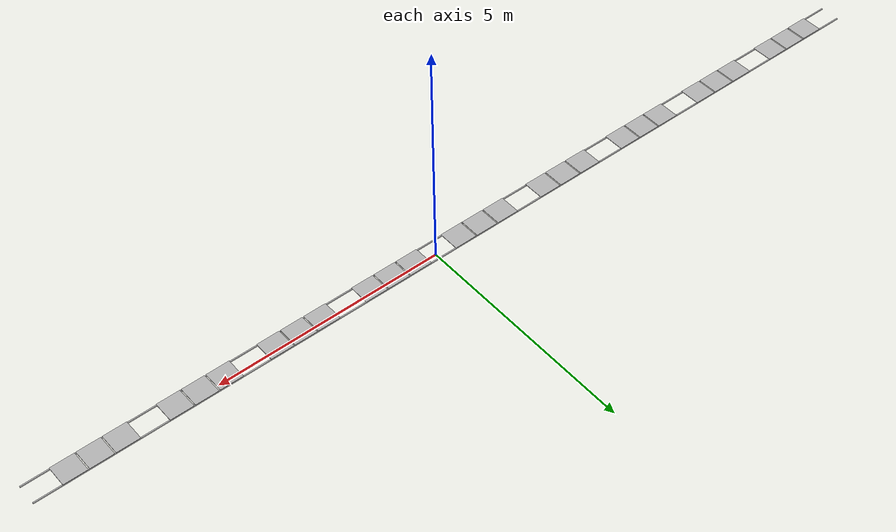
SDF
<?xml version='1.0'?>
<sdf version='1.5'>

  <model name='pathway1'>
    <link name='Rod11'>
      <self_collide>true</self_collide>
      <pose>-1.075 -0.2175 0.15 0 0 0</pose>
      <inertial>
        <mass>1</mass>
        <inertia>
          <ixx>0.000104167</ixx>
          <ixy>0</ixy>
          <ixz>0</ixz>
          <iyy>33.0009</iyy>
          <iyz>0</iyz>
          <izz>33.0009</izz>
        </inertia>
      </inertial>

      <visual name='Rod1_visual'>
        <geometry>
          <box>
            <size>19.9 0.025 0.025</size>
          </box>
        </geometry>
      </visual>

      <collision name='Rod1_collision'>
        <geometry>
          <box>
            <size>19.9 0.025 0.025</size>
          </box>
        </geometry>
        <surface>
          <friction>
            <ode>
              <mu>1.0</mu>
              <mu2>1.0</mu2>
            </ode>
          </friction>
        </surface>
      </collision>
    </link>

    <joint name="jointRod11" type="prismatic">
      <parent>world</parent>
      <child>Rod11</child>
      <pose>0 0 0 0 0 0</pose>
      <axis>
        <xyz>0 0 1</xyz>
      </axis>
    </joint>

    <link name='Rod12'>
      <self_collide>true</self_collide>
      <pose>-1.075 0.2175 0.15 0 0 0</pose>
      <inertial>
        <mass>1</mass>
        <inertia>
          <ixx>0.000104167</ixx>
          <ixy>0</ixy>
          <ixz>0</ixz>
          <iyy>33.0009</iyy>
          <iyz>0</iyz>
          <izz>33.0009</izz>
        </inertia>
      </inertial>

      <visual name='Rod1_visual'>
        <geometry>
          <box>
            <size>19.9 0.025 0.025</size>
          </box>
        </geometry>
      </visual>

      <collision name='Rod1_collision'>
        <geometry>
          <box>
            <size>19.9 0.025 0.025</size>
          </box>
        </geometry>
        <surface>
          <friction>
            <ode>
              <mu>1.0</mu>
              <mu2>1.0</mu2>
            </ode>
          </friction>
        </surface>
      </collision>
    </link>

    <joint name="Rod1toRod1" type="fixed">
      <parent>Rod11</parent>
      <child>Rod12</child>
    </joint>

 <link name='pathway1_1'>
  <pose>-10.2 0 0.18 0 0 0</pose>
  <inertial>
    <mass>1</mass>
    <inertia>
      <ixx>0.0176417</ixx>
      <ixy>0</ixy>
      <ixz>0</ixz>
      <iyy>0.0208417</iyy>
      <iyz>0</iyz>
      <izz>0.0384667</izz>
    </inertia>
  </inertial>

  <visual name='pathway1h_visual'>
    <geometry>
      <box>
        <size>0.5 0.46 0.01</size>
      </box>
    </geometry>
  </visual>

  <collision name='pathway1h_collision'>
    <geometry>
      <box>
        <size>0.5 0.46 0.01</size>
      </box>
    </geometry>
    <surface>
          <friction>
            <ode>
              <mu>1.0</mu>
              <mu2>1.0</mu2>
            </ode>
          </friction>
    </surface>
  </collision>
</link>

    <joint name="pathway1toRod111" type="fixed">
      <parent>Rod11</parent>
      <child>pathway1_1</child>
    </joint>

    <joint name="pathway1toRod112" type="fixed">
      <parent>Rod12</parent>
      <child>pathway1_1</child>
    </joint>

    <link name='pathway1_2'>
      <pose>-9.675 0 0.1725 0 0 0</pose>
      <inertial>
        <mass>1</mass>
        <inertia>
          <ixx>0.0176417</ixx>
          <ixy>0</ixy>
          <ixz>0</ixz>
          <iyy>0.0208417</iyy>
          <iyz>0</iyz>
          <izz>0.0384667</izz>
        </inertia>
      </inertial>

      <visual name='pathway1h_visual'>
        <geometry>
          <box>
            <size>0.5 0.46 0.01</size>
          </box>
        </geometry>
      </visual>

      <collision name='pathway1h_collision'>
        <geometry>
          <box>
            <size>0.5 0.46 0.01</size>
          </box>
        </geometry>
        <surface>
              <friction>
                <ode>
                  <mu>1.0</mu>
                  <mu2>1.0</mu2>
                </ode>
              </friction>
            </surface>
        <surface>
              <friction>
                <ode>
                  <mu>1.0</mu>
                  <mu2>1.0</mu2>
                </ode>
              </friction>
            </surface>
      </collision>
    </link>

    <joint name="pathway1toRod121" type="fixed">
      <parent>Rod11</parent>
      <child>pathway1_2</child>
    </joint>

    <joint name="pathway1toRod122" type="fixed">
      <parent>Rod12</parent>
      <child>pathway1_2</child>
    </joint>
    <link name='pathway1_3'>
      <pose>-9.15 0 0.1725 0 0 0</pose>
      <inertial>
        <mass>1</mass>
        <inertia>
          <ixx>0.0176417</ixx>
          <ixy>0</ixy>
          <ixz>0</ixz>
          <iyy>0.0208417</iyy>
          <iyz>0</iyz>
          <izz>0.0384667</izz>
        </inertia>
      </inertial>

      <visual name='pathway1h_visual'>
        <geometry>
          <box>
            <size>0.5 0.46 0.01</size>
          </box>
        </geometry>
      </visual>

      <collision name='pathway1h_collision'>
        <geometry>
          <box>
            <size>0.5 0.46 0.01</size>
          </box>
        </geometry>
        <surface>
          <friction>
            <ode>
              <mu>1.0</mu>
              <mu2>1.0</mu2>
            </ode>
          </friction>
        </surface>
      </collision>
    </link>

    <joint name="pathway1toRod131" type="fixed">
      <parent>Rod11</parent>
      <child>pathway1_3</child>
    </joint>

    <joint name="pathway1toRod132" type="fixed">
      <parent>Rod12</parent>
      <child>pathway1_3</child>
    </joint>

    <link name='pathway1_4'>
      <pose>-8.05 0 0.1725 0 0 0</pose>
      <inertial>
        <mass>1</mass>
        <inertia>
          <ixx>0.0176417</ixx>
          <ixy>0</ixy>
          <ixz>0</ixz>
          <iyy>0.0208417</iyy>
          <iyz>0</iyz>
          <izz>0.0384667</izz>
        </inertia>
      </inertial>

      <visual name='pathway1h_visual'>
        <geometry>
          <box>
            <size>0.5 0.46 0.01</size>
          </box>
        </geometry>
      </visual>

      <collision name='pathway1h_collision'>
        <geometry>
          <box>
            <size>0.5 0.46 0.01</size>
          </box>
        </geometry>
        <surface>
          <friction>
            <ode>
              <mu>1.0</mu>
              <mu2>1.0</mu2>
            </ode>
          </friction>
        </surface>
      </collision>
    </link>

    <joint name="pathway1toRod141" type="fixed">
      <parent>Rod11</parent>
      <child>pathway1_4</child>
    </joint>

    <joint name="pathway1toRod142" type="fixed">
      <parent>Rod12</parent>
      <child>pathway1_4</child>
    </joint>

    <link name='pathway1_5'>
      <pose>-7.525 0 0.1725 0 0 0</pose>
      <inertial>
        <mass>1</mass>
        <inertia>
          <ixx>0.0176417</ixx>
          <ixy>0</ixy>
          <ixz>0</ixz>
          <iyy>0.0208417</iyy>
          <iyz>0</iyz>
          <izz>0.0384667</izz>
        </inertia>
      </inertial>

      <visual name='pathway1h_visual'>
        <geometry>
          <box>
            <size>0.5 0.46 0.01</size>
          </box>
        </geometry>
      </visual>

      <collision name='pathway1h_collision'>
        <geometry>
          <box>
            <size>0.5 0.46 0.01</size>
          </box>
        </geometry>
        <surface>
              <friction>
                <ode>
                  <mu>1.0</mu>
                  <mu2>1.0</mu2>
                </ode>
              </friction>
            </surface>
      </collision>
    </link>

    <joint name="pathway1toRod151" type="fixed">
      <parent>Rod11</parent>
      <child>pathway1_5</child>
    </joint>

    <joint name="pathway1toRod152" type="fixed">
      <parent>Rod12</parent>
      <child>pathway1_5</child>
    </joint>

    <link name='pathway1_6'>
      <pose>-7.0 0 0.1725 0 0 0</pose>
      <inertial>
        <mass>1</mass>
        <inertia>
          <ixx>0.0176417</ixx>
          <ixy>0</ixy>
          <ixz>0</ixz>
          <iyy>0.0208417</iyy>
          <iyz>0</iyz>
          <izz>0.0384667</izz>
        </inertia>
      </inertial>

      <visual name='pathway1h_visual'>
        <geometry>
          <box>
            <size>0.5 0.46 0.01</size>
          </box>
        </geometry>
      </visual>

      <collision name='pathway1h_collision'>
        <geometry>
          <box>
            <size>0.5 0.46 0.01</size>
          </box>
        </geometry>
        <surface>
          <friction>
            <ode>
              <mu>1.0</mu>
              <mu2>1.0</mu2>
            </ode>
          </friction>
        </surface>
      </collision>
    </link>

    <joint name="pathway1toRod161" type="fixed">
      <parent>Rod11</parent>
      <child>pathway1_6</child>
    </joint>

    <joint name="pathway1toRod162" type="fixed">
      <parent>Rod12</parent>
      <child>pathway1_6</child>
    </joint>

    <link name='pathway1_7'>
      <pose>-5.9 0 0.1725 0 0 0</pose>
      <inertial>
        <mass>1</mass>
        <inertia>
          <ixx>0.0176417</ixx>
          <ixy>0</ixy>
          <ixz>0</ixz>
          <iyy>0.0208417</iyy>
          <iyz>0</iyz>
          <izz>0.0384667</izz>
        </inertia>
      </inertial>

      <visual name='pathway1h_visual'>
        <geometry>
          <box>
            <size>0.5 0.46 0.01</size>
          </box>
        </geometry>
      </visual>

      <collision name='pathway1h_collision'>
        <geometry>
          <box>
            <size>0.5 0.46 0.01</size>
          </box>
        </geometry>
        <surface>
          <friction>
            <ode>
              <mu>1.0</mu>
              <mu2>1.0</mu2>
            </ode>
          </friction>
        </surface>
      </collision>
    </link>

    <joint name="pathway1toRod171" type="fixed">
      <parent>Rod11</parent>
      <child>pathway1_7</child>
    </joint>

    <joint name="pathway1toRod172" type="fixed">
      <parent>Rod12</parent>
      <child>pathway1_7</child>
    </joint>

    <link name='pathway1_8'>
      <pose>-5.375 0 0.1725 0 0 0</pose>
      <inertial>
        <mass>1</mass>
        <inertia>
          <ixx>0.0176417</ixx>
          <ixy>0</ixy>
          <ixz>0</ixz>
          <iyy>0.0208417</iyy>
          <iyz>0</iyz>
          <izz>0.0384667</izz>
        </inertia>
      </inertial>

      <visual name='pathway1h_visual'>
        <geometry>
          <box>
            <size>0.5 0.46 0.01</size>
          </box>
        </geometry>
      </visual>

      <collision name='pathway1h_collision'>
        <geometry>
          <box>
            <size>0.5 0.46 0.01</size>
          </box>
        </geometry>
        <surface>
              <friction>
                <ode>
                  <mu>1.0</mu>
                  <mu2>1.0</mu2>
                </ode>
              </friction>
            </surface>
      </collision>
    </link>

    <joint name="pathway1toRod181" type="fixed">
      <parent>Rod11</parent>
      <child>pathway1_8</child>
    </joint>

    <joint name="pathway1toRod182" type="fixed">
      <parent>Rod12</parent>
      <child>pathway1_8</child>
    </joint>

    <link name='pathway1_9'>
      <pose>-4.85 0 0.1725 0 0 0</pose>
      <inertial>
        <mass>1</mass>
        <inertia>
          <ixx>0.0176417</ixx>
          <ixy>0</ixy>
          <ixz>0</ixz>
          <iyy>0.0208417</iyy>
          <iyz>0</iyz>
          <izz>0.0384667</izz>
        </inertia>
      </inertial>

      <visual name='pathway1h_visual'>
        <geometry>
          <box>
            <size>0.5 0.46 0.01</size>
          </box>
        </geometry>
      </visual>

      <collision name='pathway1h_collision'>
        <geometry>
          <box>
            <size>0.5 0.46 0.01</size>
          </box>
        </geometry>
        <surface>
          <friction>
            <ode>
              <mu>1.0</mu>
              <mu2>1.0</mu2>
            </ode>
          </friction>
        </surface>
      </collision>
    </link>

    <joint name="pathway1toRod191" type="fixed">
      <parent>Rod11</parent>
      <child>pathway1_9</child>
    </joint>

    <joint name="pathway1toRod192" type="fixed">
      <parent>Rod12</parent>
      <child>pathway1_9</child>
    </joint>

    <link name='pathway1_10'>
      <pose>-3.75 0 0.1725 0 0 0</pose>
      <inertial>
        <mass>1</mass>
        <inertia>
          <ixx>0.0176417</ixx>
          <ixy>0</ixy>
          <ixz>0</ixz>
          <iyy>0.0208417</iyy>
          <iyz>0</iyz>
          <izz>0.0384667</izz>
        </inertia>
      </inertial>

      <visual name='pathway1h_visual'>
        <geometry>
          <box>
            <size>0.5 0.46 0.01</size>
          </box>
        </geometry>
      </visual>

      <collision name='pathway1h_collision'>
        <geometry>
          <box>
            <size>0.5 0.46 0.01</size>
          </box>
        </geometry>
        <surface>
          <friction>
            <ode>
              <mu>1.0</mu>
              <mu2>1.0</mu2>
            </ode>
          </friction>
        </surface>
      </collision>
    </link>

    <joint name="pathway1toRod1101" type="fixed">
      <parent>Rod11</parent>
      <child>pathway1_10</child>
    </joint>

    <joint name="pathway1toRod1102" type="fixed">
      <parent>Rod12</parent>
      <child>pathway1_10</child>
    </joint>

    <link name='pathway1_11'>
      <pose>-3.225 0 0.1725 0 0 0</pose>
      <inertial>
        <mass>1</mass>
        <inertia>
          <ixx>0.0176417</ixx>
          <ixy>0</ixy>
          <ixz>0</ixz>
          <iyy>0.0208417</iyy>
          <iyz>0</iyz>
          <izz>0.0384667</izz>
        </inertia>
      </inertial>

      <visual name='pathway1h_visual'>
        <geometry>
          <box>
            <size>0.5 0.46 0.01</size>
          </box>
        </geometry>
      </visual>

      <collision name='pathway1h_collision'>
        <geometry>
          <box>
            <size>0.5 0.46 0.01</size>
          </box>
        </geometry>
        <surface>
          <friction>
            <ode>
              <mu>1.0</mu>
              <mu2>1.0</mu2>
            </ode>
          </friction>
        </surface>
      </collision>
    </link>

    <joint name="pathway1toRod1111" type="fixed">
      <parent>Rod11</parent>
      <child>pathway1_11</child>
    </joint>

    <joint name="pathway1toRod1112" type="fixed">
      <parent>Rod12</parent>
      <child>pathway1_11</child>
    </joint>

    <link name='pathway1_12'>
      <pose>-2.7 0 0.1725 0 0 0</pose>
      <inertial>
        <mass>1</mass>
       <inertia>
          <ixx>0.0176417</ixx>
          <ixy>0</ixy>
          <ixz>0</ixz>
          <iyy>0.0208417</iyy>
          <iyz>0</iyz>
          <izz>0.0384667</izz>
        </inertia>
      </inertial>

      <visual name='pathway1h_visual'>
        <geometry>
          <box>
            <size>0.5 0.46 0.01</size>
          </box>
        </geometry>
      </visual>

      <collision name='pathway1h_collision'>
        <geometry>
          <box>
            <size>0.5 0.46 0.01</size>
          </box>
        </geometry>
        <surface>
          <friction>
            <ode>
              <mu>1.0</mu>
              <mu2>1.0</mu2>
            </ode>
          </friction>
        </surface>
      </collision>
    </link>

    <joint name="pathway1toRod1121" type="fixed">
      <parent>Rod11</parent>
      <child>pathway1_12</child>
    </joint>

    <joint name="pathway1toRod1122" type="fixed">
      <parent>Rod12</parent>
      <child>pathway1_12</child>
    </joint>

    <link name='pathway1_13'>
      <pose>-1.6 0 0.1725 0 0 0</pose>
      <inertial>
        <mass>1</mass>
        <inertia>
          <ixx>0.0176417</ixx>
          <ixy>0</ixy>
          <ixz>0</ixz>
          <iyy>0.0208417</iyy>
          <iyz>0</iyz>
          <izz>0.0384667</izz>
        </inertia>
      </inertial>

      <visual name='pathway1h_visual'>
        <geometry>
          <box>
            <size>0.5 0.46 0.01</size>
          </box>
        </geometry>
      </visual>

      <collision name='pathway1h_collision'>
        <geometry>
          <box>
            <size>0.5 0.46 0.01</size>
          </box>
        </geometry>
        <surface>
          <friction>
            <ode>
              <mu>1.0</mu>
              <mu2>1.0</mu2>
            </ode>
          </friction>
        </surface>
      </collision>
    </link>

    <joint name="pathway1toRod1131" type="fixed">
      <parent>Rod11</parent>
      <child>pathway1_13</child>
    </joint>

    <joint name="pathway1toRod1132" type="fixed">
      <parent>Rod12</parent>
      <child>pathway1_13</child>
    </joint>

    <link name='pathway1_14'>
      <pose>-1.075 0 0.1725 0 0 0</pose>
      <inertial>
        <mass>1</mass>
       <inertia>
          <ixx>0.0176417</ixx>
          <ixy>0</ixy>
          <ixz>0</ixz>
          <iyy>0.0208417</iyy>
          <iyz>0</iyz>
          <izz>0.0384667</izz>
        </inertia>
      </inertial>

      <visual name='pathway1h_visual'>
        <geometry>
          <box>
            <size>0.5 0.46 0.01</size>
          </box>
        </geometry>
      </visual>

      <collision name='pathway1h_collision'>
        <geometry>
          <box>
            <size>0.5 0.46 0.01</size>
          </box>
        </geometry>
        <surface>
          <friction>
            <ode>
              <mu>1.0</mu>
              <mu2>1.0</mu2>
            </ode>
          </friction>
        </surface>
      </collision>
    </link>

    <joint name="pathway1toRod1141" type="fixed">
      <parent>Rod11</parent>
      <child>pathway1_14</child>
    </joint>

    <joint name="pathway1toRod1142" type="fixed">
      <parent>Rod12</parent>
      <child>pathway1_14</child>
    </joint>

    <link name='pathway1_15'>
      <pose>-0.55 0 0.1725 0 0 0</pose>
      <inertial>
        <mass>1</mass>
        <inertia>
          <ixx>0.0176417</ixx>
          <ixy>0</ixy>
          <ixz>0</ixz>
          <iyy>0.0208417</iyy>
          <iyz>0</iyz>
          <izz>0.0384667</izz>
        </inertia>
      </inertial>

      <visual name='pathway1h_visual'>
        <geometry>
          <box>
            <size>0.5 0.46 0.01</size>
          </box>
        </geometry>
      </visual>

      <collision name='pathway1h_collision'>
        <geometry>
          <box>
            <size>0.5 0.46 0.01</size>
          </box>
        </geometry>
        <surface>
          <friction>
            <ode>
              <mu>1.0</mu>
              <mu2>1.0</mu2>
            </ode>
          </friction>
        </surface>
      </collision>
    </link>

    <joint name="pathway1toRod1151" type="fixed">
      <parent>Rod11</parent>
      <child>pathway1_15</child>
    </joint>

    <joint name="pathway1toRod1152" type="fixed">
      <parent>Rod12</parent>
      <child>pathway1_15</child>
    </joint>

    <link name='pathway1_16'>
      <pose>0.55 0 0.1725 0 0 0</pose>
      <inertial>
        <mass>1</mass>
        <inertia>
          <ixx>0.0176417</ixx>
          <ixy>0</ixy>
          <ixz>0</ixz>
          <iyy>0.0208417</iyy>
          <iyz>0</iyz>
          <izz>0.0384667</izz>
        </inertia>
      </inertial>

      <visual name='pathway1h_visual'>
        <geometry>
          <box>
            <size>0.5 0.46 0.01</size>
          </box>
        </geometry>
      </visual>

      <collision name='pathway1h_collision'>
        <geometry>
          <box>
            <size>0.5 0.46 0.01</size>
          </box>
        </geometry>
        <surface>
          <friction>
            <ode>
              <mu>1.0</mu>
              <mu2>1.0</mu2>
            </ode>
          </friction>
        </surface>
      </collision>
    </link>

    <joint name="pathway1toRod1161" type="fixed">
      <parent>Rod11</parent>
      <child>pathway1_16</child>
    </joint>

    <joint name="pathway1toRod1162" type="fixed">
      <parent>Rod12</parent>
      <child>pathway1_16</child>
    </joint>

    <link name='pathway1_17'>
      <pose>1.075 0 0.1725 0 0 0</pose>
      <inertial>
        <mass>1</mass>
        <inertia>
          <ixx>0.0176417</ixx>
          <ixy>0</ixy>
          <ixz>0</ixz>
          <iyy>0.0208417</iyy>
          <iyz>0</iyz>
          <izz>0.0384667</izz>
        </inertia>
      </inertial>

      <visual name='pathway1h_visual'>
        <geometry>
          <box>
            <size>0.5 0.46 0.01</size>
          </box>
        </geometry>
      </visual>

      <collision name='pathway1h_collision'>
        <geometry>
          <box>
            <size>0.5 0.46 0.01</size>
          </box>
        </geometry>
        <surface>
          <friction>
            <ode>
              <mu>1.0</mu>
              <mu2>1.0</mu2>
            </ode>
          </friction>
        </surface>
      </collision>
    </link>

    <joint name="pathway1toRod1171" type="fixed">
      <parent>Rod11</parent>
      <child>pathway1_17</child>
    </joint>

    <joint name="pathway1toRod1172" type="fixed">
      <parent>Rod12</parent>
      <child>pathway1_17</child>
    </joint>

    <link name='pathway1_18'>
      <pose>1.6 0 0.1725 0 0 0</pose>
      <inertial>
        <mass>1</mass>
        <inertia>
          <ixx>0.0176417</ixx>
          <ixy>0</ixy>
          <ixz>0</ixz>
          <iyy>0.0208417</iyy>
          <iyz>0</iyz>
          <izz>0.0384667</izz>
        </inertia>
      </inertial>

      <visual name='pathway1h_visual'>
        <geometry>
          <box>
            <size>0.5 0.46 0.01</size>
          </box>
        </geometry>
      </visual>

      <collision name='pathway1h_collision'>
        <geometry>
          <box>
            <size>0.5 0.46 0.01</size>
          </box>
        </geometry>
        <surface>
          <friction>
            <ode>
              <mu>1.0</mu>
              <mu2>1.0</mu2>
            </ode>
          </friction>
        </surface>
      </collision>
    </link>

    <joint name="pathway1toRod1181" type="fixed">
      <parent>Rod11</parent>
      <child>pathway1_18</child>
    </joint>

    <joint name="pathway1toRod1182" type="fixed">
      <parent>Rod12</parent>
      <child>pathway1_18</child>
    </joint>

    <link name='pathway1h_19'>
      <pose>2.7 0 0.1725 0 0 0</pose>
      <inertial>
        <mass>1</mass>
        <inertia>
          <ixx>0.0176417</ixx>
          <ixy>0</ixy>
          <ixz>0</ixz>
          <iyy>0.0208417</iyy>
          <iyz>0</iyz>
          <izz>0.0384667</izz>
        </inertia>
      </inertial>

      <visual name='pathway1h_visual'>
        <geometry>
          <box>
            <size>0.5 0.46 0.01</size>
          </box>
        </geometry>
      </visual>

      <collision name='pathway1h_collision'>
        <geometry>
          <box>
            <size>0.5 0.46 0.01</size>
          </box>
        </geometry>
        <surface>
          <friction>
            <ode>
              <mu>1.0</mu>
              <mu2>1.0</mu2>
            </ode>
          </friction>
        </surface>
      </collision>
    </link>

    <joint name="pathway1htoRod1d191" type="fixed">
      <parent>Rod11</parent>
      <child>pathway1h_19</child>
    </joint>

    <joint name="pathway1htoRod1d192" type="fixed">
      <parent>Rod12</parent>
      <child>pathway1h_19</child>
    </joint>
    <link name='pathway1_20'>
      <pose>3.225 0 0.1725 0 0 0</pose>
      <inertial>
        <mass>1</mass>
        <inertia>
           <ixx>0.0176417</ixx>
          <ixy>0</ixy>
          <ixz>0</ixz>
          <iyy>0.0208417</iyy>
          <iyz>0</iyz>
          <izz>0.0384667</izz>
        </inertia>
      </inertial>

      <visual name='pathway1h_visual'>
        <geometry>
          <box>
            <size>0.5 0.46 0.01</size>
          </box>
        </geometry>
      </visual>

      <collision name='pathway1h_collision'>
        <geometry>
          <box>
            <size>0.5 0.46 0.01</size>
          </box>
        </geometry>
        <surface>
          <friction>
            <ode>
              <mu>1.0</mu>
              <mu2>1.0</mu2>
            </ode>
          </friction>
        </surface>
      </collision>
    </link>

    <joint name="pathway1toRod1201" type="fixed">
      <parent>Rod11</parent>
      <child>pathway1_20</child>
    </joint>

    <joint name="pathway1toRod1202" type="fixed">
      <parent>Rod12</parent>
      <child>pathway1_20</child>
    </joint>

    <link name='pathway1_21'>
      <pose>3.75 0 0.1725 0 0 0</pose>
      <inertial>
        <mass>1</mass>
        <inertia>
          <ixx>0.0176417</ixx>
          <ixy>0</ixy>
          <ixz>0</ixz>
          <iyy>0.0208417</iyy>
          <iyz>0</iyz>
          <izz>0.0384667</izz>
        </inertia>
      </inertial>

      <visual name='pathway1h_visual'>
        <geometry>
          <box>
            <size>0.5 0.46 0.01</size>
          </box>
        </geometry>
      </visual>

      <collision name='pathway1h_collision'>
        <geometry>
          <box>
            <size>0.5 0.46 0.01</size>
          </box>
        </geometry>
        <surface>
              <friction>
                <ode>
                  <mu>1.0</mu>
                  <mu2>1.0</mu2>
                </ode>
              </friction>
            </surface>
      </collision>
    </link>

    <joint name="pathway1toRod1211" type="fixed">
      <parent>Rod11</parent>
      <child>pathway1_21</child>
    </joint>

    <joint name="pathway1toRod1212" type="fixed">
      <parent>Rod12</parent>
      <child>pathway1_21</child>
    </joint>

    <link name='pathway1_22'>
      <pose>4.85 0 0.1725 0 0 0</pose>
      <inertial>
        <mass>1</mass>
        <inertia>
          <ixx>0.0176417</ixx>
          <ixy>0</ixy>
          <ixz>0</ixz>
          <iyy>0.0208417</iyy>
          <iyz>0</iyz>
          <izz>0.0384667</izz>
        </inertia>
      </inertial>

      <visual name='pathway1h_visual'>
        <geometry>
          <box>
            <size>0.5 0.46 0.01</size>
          </box>
        </geometry>
      </visual>

      <collision name='pathway1h_collision'>
        <geometry>
          <box>
            <size>0.5 0.46 0.01</size>
          </box>
        </geometry>
        <surface>
          <friction>
            <ode>
              <mu>1.0</mu>
              <mu2>1.0</mu2>
            </ode>
          </friction>
        </surface>
      </collision>
    </link>

    <joint name="pathway1toRod1221" type="fixed">
      <parent>Rod11</parent>
      <child>pathway1_22</child>
    </joint>

    <joint name="pathway1toRod1222" type="fixed">
      <parent>Rod12</parent>
      <child>pathway1_22</child>
    </joint>

    <link name='pathway1_23'>
      <pose>5.375 0 0.1725 0 0 0</pose>
      <inertial>
        <mass>1</mass>
        <inertia>
          <ixx>0.0176417</ixx>
          <ixy>0</ixy>
          <ixz>0</ixz>
          <iyy>0.0208417</iyy>
          <iyz>0</iyz>
          <izz>0.0384667</izz>
        </inertia>
      </inertial>

      <visual name='pathway1h_visual'>
        <geometry>
          <box>
            <size>0.5 0.46 0.01</size>
          </box>
        </geometry>
      </visual>

      <collision name='pathway1h_collision'>
        <geometry>
          <box>
            <size>0.5 0.46 0.01</size>
          </box>
        </geometry>
        <surface>
          <friction>
            <ode>
              <mu>1.0</mu>
              <mu2>1.0</mu2>
            </ode>
          </friction>
        </surface>
      </collision>
    </link>

    <joint name="pathway1toRod1231" type="fixed">
      <parent>Rod11</parent>
      <child>pathway1_23</child>
    </joint>

    <joint name="pathway1toRod1232" type="fixed">
      <parent>Rod12</parent>
      <child>pathway1_23</child>
    </joint>

    <link name='pathway1_24'>
      <pose>5.9 0 0.1725 0 0 0</pose>
      <inertial>
        <mass>1</mass>
        <inertia>
          <ixx>0.0176417</ixx>
          <ixy>0</ixy>
          <ixz>0</ixz>
          <iyy>0.0208417</iyy>
          <iyz>0</iyz>
          <izz>0.0384667</izz>
        </inertia>
      </inertial>

      <visual name='pathway1h_visual'>
        <geometry>
          <box>
            <size>0.5 0.46 0.01</size>
          </box>
        </geometry>
      </visual>

      <collision name='pathway1h_collision'>
        <geometry>
          <box>
            <size>0.5 0.46 0.01</size>
          </box>
        </geometry>
        <surface>
          <friction>
            <ode>
              <mu>1.0</mu>
              <mu2>1.0</mu2>
            </ode>
          </friction>
        </surface>
      </collision>
    </link>

    <joint name="pathway1toRod1241" type="fixed">
      <parent>Rod11</parent>
      <child>pathway1_24</child>
    </joint>

    <joint name="pathway1toRod1242" type="fixed">
      <parent>Rod12</parent>
      <child>pathway1_24</child>
    </joint>

    <link name='pathway1_25'>
      <pose>7.0 0 0.1725 0 0 0</pose>
      <inertial>
        <mass>1</mass>
        <inertia>
          <ixx>0.0176417</ixx>
          <ixy>0</ixy>
          <ixz>0</ixz>
          <iyy>0.0208417</iyy>
          <iyz>0</iyz>
          <izz>0.0384667</izz>
        </inertia>
      </inertial>

      <visual name='pathway1h_visual'>
        <geometry>
          <box>
            <size>0.5 0.46 0.01</size>
          </box>
        </geometry>
      </visual>

      <collision name='pathway1h_collision'>
        <geometry>
          <box>
            <size>0.5 0.46 0.01</size>
          </box>
        </geometry>
        <surface>
          <friction>
            <ode>
              <mu>1.0</mu>
              <mu2>1.0</mu2>
            </ode>
          </friction>
        </surface>
      </collision>
    </link>

    <joint name="pathway1toRod1251" type="fixed">
      <parent>Rod11</parent>
      <child>pathway1_25</child>
    </joint>

    <joint name="pathway1toRod1252" type="fixed">
      <parent>Rod12</parent>
      <child>pathway1_25</child>
    </joint>

    <link name='pathway1_26'>
      <pose>7.525 0 0.1725 0 0 0</pose>
      <inertial>
        <mass>1</mass>
        <inertia>
          <ixx>0.0176417</ixx>
          <ixy>0</ixy>
          <ixz>0</ixz>
          <iyy>0.0208417</iyy>
          <iyz>0</iyz>
          <izz>0.0384667</izz>
        </inertia>
      </inertial>

      <visual name='pathway1h_visual'>
        <geometry>
          <box>
            <size>0.5 0.46 0.01</size>
          </box>
        </geometry>
      </visual>

      <collision name='pathway1h_collision'>
        <geometry>
          <box>
            <size>0.5 0.46 0.01</size>
          </box>
        </geometry>
        <surface>
          <friction>
            <ode>
              <mu>1.0</mu>
              <mu2>1.0</mu2>
            </ode>
          </friction>
        </surface>
      </collision>
    </link>

    <joint name="pathway1toRod1261" type="fixed">
      <parent>Rod11</parent>
      <child>pathway1_26</child>
    </joint>

    <joint name="pathway1toRod1262" type="fixed">
      <parent>Rod12</parent>
      <child>pathway1_26</child>
    </joint>

    <link name='pathway1_27'>
      <pose>8.05 0 0.1725 0 0 0</pose>
      <inertial>
        <mass>1</mass>
        <inertia>
          <ixx>0.0176417</ixx>
          <ixy>0</ixy>
          <ixz>0</ixz>
          <iyy>0.0208417</iyy>
          <iyz>0</iyz>
          <izz>0.0384667</izz>
        </inertia>
      </inertial>

      <visual name='pathway1h_visual'>
        <geometry>
          <box>
            <size>0.5 0.46 0.01</size>
          </box>
        </geometry>
      </visual>

      <collision name='pathway1h_collision'>
        <geometry>
          <box>
            <size>0.5 0.46 0.01</size>
          </box>
        </geometry>
        <surface>
          <friction>
            <ode>
              <mu>1.0</mu>
              <mu2>1.0</mu2>
            </ode>
          </friction>
        </surface>
      </collision>
    </link>

    <joint name="pathway1toRod1271" type="fixed">
      <parent>Rod11</parent>
      <child>pathway1_27</child>
    </joint>

    <joint name="pathway1toRod1272" type="fixed">
      <parent>Rod12</parent>
      <child>pathway1_27</child>
    </joint>

  </model>

</sdf>
